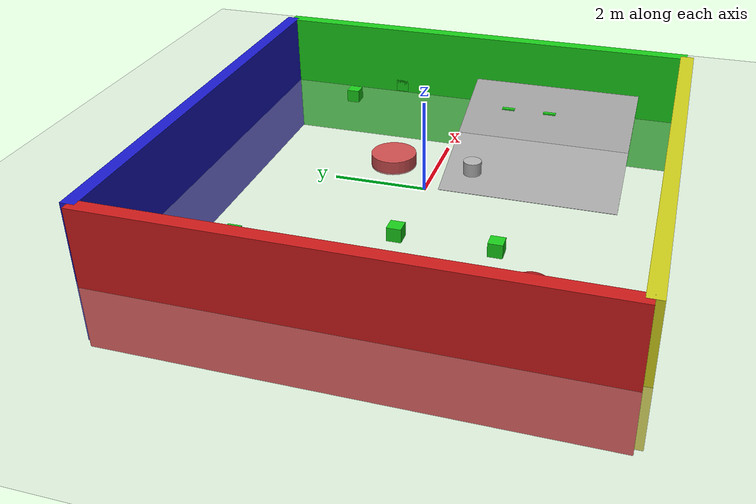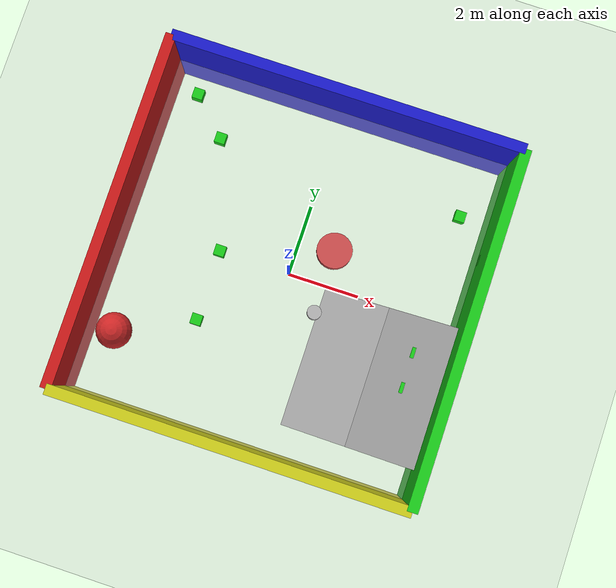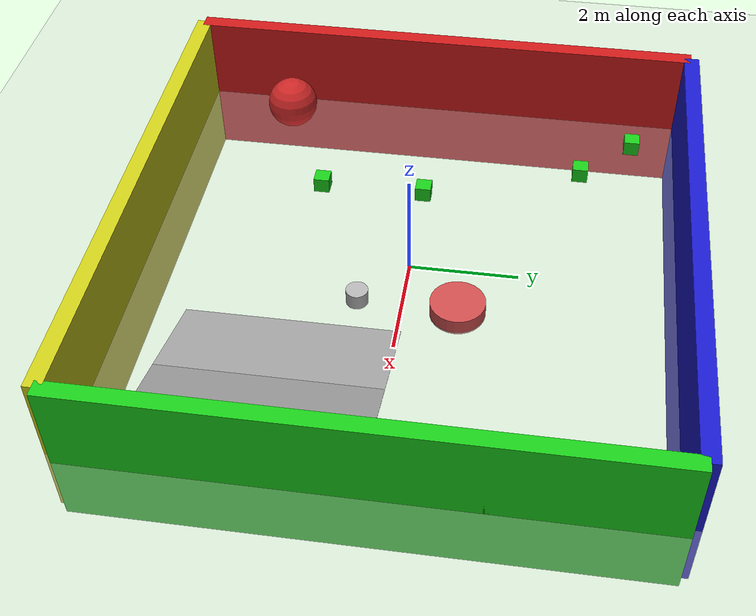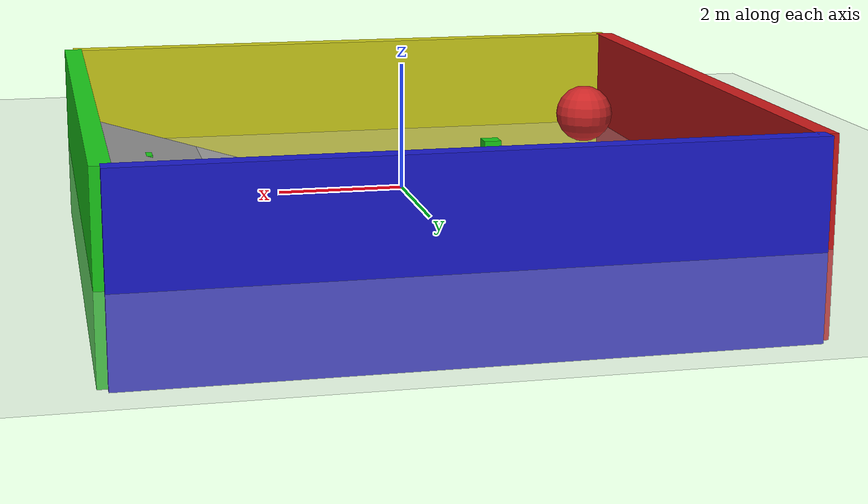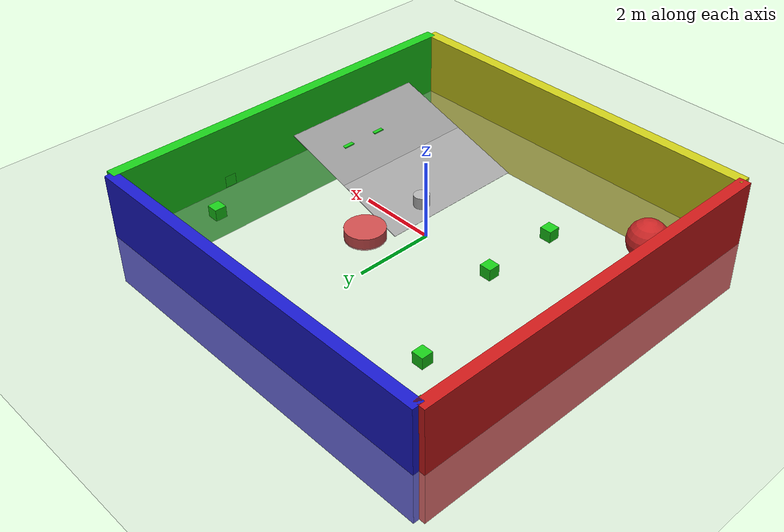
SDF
<?xml version="1.0" ?>
<sdf version='1.10'>
  <world name='empty'>

    <physics name='1ms' type='ignored'>
      <max_step_size>0.001</max_step_size>
      <real_time_factor>1</real_time_factor>
      <real_time_update_rate>1000</real_time_update_rate>
    </physics>

        <plugin
            filename="gz-sim-physics-system"
            name="gz::sim::systems::Physics">
        </plugin>
        <plugin
            filename="gz-sim-user-commands-system"
            name="gz::sim::systems::UserCommands">
        </plugin>
        <plugin
            filename="gz-sim-scene-broadcaster-system"
            name="gz::sim::systems::SceneBroadcaster">
        </plugin>
        <plugin
            filename="gz-sim-imu-system"
            name="gz::sim::systems::Imu">
        </plugin>
        <plugin
            filename="gz-sim-sensors-system"
            name="gz::sim::systems::Sensors">
            <render_engine>ogre2</render_engine>
        </plugin>

        <plugin
            filename="gz-sim-buoyancy-system"
            name="gz::sim::systems::Buoyancy">
            <uniform_fluid_density>1000</uniform_fluid_density>
        </plugin>
          <plugin
            filename="gz-sim-particle-emitter-system"
            name="gz::sim::systems::ParticleEmitter">
          </plugin>

        <plugin
            filename="gz-sim-contact-system"
            name="gz::sim::systems::Contact">
        </plugin>

        <gui fullscreen="0">

          <!-- 3D scene -->
          <plugin filename="MinimalScene" name="3D View">
            <gz-gui>
              <title>3D View</title>
              <property type="bool" key="showTitleBar">false</property>
              <property type="string" key="state">docked</property>
            </gz-gui>

            <engine>ogre2</engine>
            <scene>scene</scene>
            <ambient_light>0.4 0.4 0.4</ambient_light>
            <background_color>0.8 0.8 0.8</background_color>
            <camera_pose>-6 0 6 0 0.5 0</camera_pose>
            <camera_clip>
              <near>0.25</near>
              <far>25000</far>
            </camera_clip>
          </plugin>

          <!-- Plugins that add functionality to the scene -->
          <plugin filename="EntityContextMenuPlugin" name="Entity context menu">
            <gz-gui>
              <property key="state" type="string">floating</property>
              <property key="width" type="double">5</property>
              <property key="height" type="double">5</property>
              <property key="showTitleBar" type="bool">false</property>
            </gz-gui>
          </plugin>
          <plugin filename="GzSceneManager" name="Scene Manager">
            <gz-gui>
              <property key="resizable" type="bool">false</property>
              <property key="width" type="double">5</property>
              <property key="height" type="double">5</property>
              <property key="state" type="string">floating</property>
              <property key="showTitleBar" type="bool">false</property>
            </gz-gui>
          </plugin>
          <plugin filename="InteractiveViewControl" name="Interactive view control">
            <gz-gui>
              <property key="resizable" type="bool">false</property>
              <property key="width" type="double">5</property>
              <property key="height" type="double">5</property>
              <property key="state" type="string">floating</property>
              <property key="showTitleBar" type="bool">false</property>
            </gz-gui>
          </plugin>
          <plugin filename="CameraTracking" name="Camera Tracking">
            <gz-gui>
              <property key="resizable" type="bool">false</property>
              <property key="width" type="double">5</property>
              <property key="height" type="double">5</property>
              <property key="state" type="string">floating</property>
              <property key="showTitleBar" type="bool">false</property>
            </gz-gui>
          </plugin>
          <plugin filename="MarkerManager" name="Marker manager">
            <gz-gui>
              <property key="resizable" type="bool">false</property>
              <property key="width" type="double">5</property>
              <property key="height" type="double">5</property>
              <property key="state" type="string">floating</property>
              <property key="showTitleBar" type="bool">false</property>
            </gz-gui>
          </plugin>
          <plugin filename="SelectEntities" name="Select Entities">
            <gz-gui>
              <anchors target="Select entities">
                <line own="right" target="right"/>
                <line own="top" target="top"/>
              </anchors>
              <property key="resizable" type="bool">false</property>
              <property key="width" type="double">5</property>
              <property key="height" type="double">5</property>
              <property key="state" type="string">floating</property>
              <property key="showTitleBar" type="bool">false</property>
            </gz-gui>
          </plugin>
          <plugin filename="VisualizationCapabilities" name="Visualization Capabilities">
            <gz-gui>
              <property key="resizable" type="bool">false</property>
              <property key="width" type="double">5</property>
              <property key="height" type="double">5</property>
              <property key="state" type="string">floating</property>
              <property key="showTitleBar" type="bool">false</property>
            </gz-gui>
          </plugin>

          <plugin filename="Spawn" name="Spawn Entities">
            <gz-gui>
              <anchors target="Select entities">
                <line own="right" target="right"/>
                <line own="top" target="top"/>
              </anchors>
              <property key="resizable" type="bool">false</property>
              <property key="width" type="double">5</property>
              <property key="height" type="double">5</property>
              <property key="state" type="string">floating</property>
              <property key="showTitleBar" type="bool">false</property>
            </gz-gui>
          </plugin>

          <!-- World control -->
          <plugin filename="WorldControl" name="World control">
            <gz-gui>
              <title>World control</title>
              <property type="bool" key="showTitleBar">false</property>
              <property type="bool" key="resizable">false</property>
              <property type="double" key="height">72</property>
              <property type="double" key="width">121</property>
              <property type="double" key="z">1</property>

              <property type="string" key="state">floating</property>
              <anchors target="3D View">
                <line own="left" target="left"/>
                <line own="bottom" target="bottom"/>
              </anchors>
            </gz-gui>

            <play_pause>true</play_pause>
            <step>true</step>
            <start_paused>true</start_paused>
            <use_event>true</use_event>

          </plugin>

          <!-- World statistics -->
          <plugin filename="WorldStats" name="World stats">
            <gz-gui>
              <title>World stats</title>
              <property type="bool" key="showTitleBar">false</property>
              <property type="bool" key="resizable">false</property>
              <property type="double" key="height">110</property>
              <property type="double" key="width">290</property>
              <property type="double" key="z">1</property>

              <property type="string" key="state">floating</property>
              <anchors target="3D View">
                <line own="right" target="right"/>
                <line own="bottom" target="bottom"/>
              </anchors>
            </gz-gui>

            <sim_time>true</sim_time>
            <real_time>true</real_time>
            <real_time_factor>true</real_time_factor>
            <iterations>true</iterations>
          </plugin>

          <!-- Insert simple shapes -->
          <plugin filename="Shapes" name="Shapes">
            <gz-gui>
              <property key="resizable" type="bool">false</property>
              <property key="x" type="double">0</property>
              <property key="y" type="double">0</property>
              <property key="width" type="double">250</property>
              <property key="height" type="double">50</property>
              <property key="state" type="string">floating</property>
              <property key="showTitleBar" type="bool">false</property>
              <property key="cardBackground" type="string">#666666</property>
            </gz-gui>
          </plugin>

          <!-- Insert lights -->
          <plugin filename="Lights" name="Lights">
            <gz-gui>
              <property key="resizable" type="bool">false</property>
              <property key="x" type="double">250</property>
              <property key="y" type="double">0</property>
              <property key="width" type="double">150</property>
              <property key="height" type="double">50</property>
              <property key="state" type="string">floating</property>
              <property key="showTitleBar" type="bool">false</property>
              <property key="cardBackground" type="string">#666666</property>
            </gz-gui>
          </plugin>

          <!-- Translate / rotate -->
          <plugin filename="TransformControl" name="Transform control">
            <gz-gui>
              <property key="resizable" type="bool">false</property>
              <property key="x" type="double">0</property>
              <property key="y" type="double">50</property>
              <property key="width" type="double">250</property>
              <property key="height" type="double">50</property>
              <property key="state" type="string">floating</property>
              <property key="showTitleBar" type="bool">false</property>
              <property key="cardBackground" type="string">#777777</property>
            </gz-gui>
          </plugin>

          <!-- Inspector -->
          <plugin filename="ComponentInspector" name="Component inspector">
            <gz-gui>
              <property type="string" key="state">docked_collapsed</property>
            </gz-gui>
          </plugin>

          <!-- View angle -->
          <plugin filename="ViewAngle" name="View angle">
            <gz-gui>
              <property type="string" key="state">docked_collapsed</property>
            </gz-gui>
          </plugin>

            <!-- KeyPublisher plugin-->
            <plugin filename="KeyPublisher" name="Key Publisher"/>

        </gui>

    <gravity>0 0 9.8</gravity>
    <magnetic_field>5.5644999999999998e-06 2.2875799999999999e-05 -4.2388400000000002e-05</magnetic_field>
    <atmosphere type='adiabatic'/>
    <scene>
      <ambient>0.400000006 0.400000006 0.400000006 1</ambient>
      <background>0.699999988 0.699999988 0.699999988 1</background>
      <shadows>true</shadows>
    </scene>
    <model name='ground_plane'>
      <static>true</static>
      <link name='link'>
        <collision name='collision'>
          <geometry>
            <plane>
              <normal>0 0 1</normal>
              <size>100 100</size>
            </plane>
          </geometry>
          <surface>
            <friction>
              <ode>
               <mu>1</mu>
               <mu2>1</mu2>
              </ode>
            </friction>
            <bounce/>
            <contact/>
          </surface>
        </collision>
        <visual name='visual'>
          <geometry>
            <plane>
              <normal>0 0 1</normal>
              <size>100 100</size>
            </plane>
          </geometry>
          <material>
            <ambient>0.800000012 0.800000012 0.800000012 1</ambient>
            <diffuse>0.800000012 0.800000012 0.800000012 1</diffuse>
            <specular>0.800000012 0.800000012 0.800000012 1</specular>
          </material>
        </visual>
        <pose>0 0 0 0 0 0</pose>
        <inertial>
          <pose>0 0 0 0 0 0</pose>
          <mass>1</mass>
          <inertia>
            <ixx>1</ixx>
            <ixy>0</ixy>
            <ixz>0</ixz>
            <iyy>1</iyy>
            <iyz>0</iyz>
            <izz>1</izz>
          </inertia>
        </inertial>
        <enable_wind>false</enable_wind>
      </link>
      <pose>0 0 0 0 0 0</pose>
      <self_collide>false</self_collide>
    </model>
    <model name='wall_left'>
      <pose>-5 0 0.15 0 0 0</pose>
      <link name='wall_left_link'>
        <collision name='wall_left_collision'>
          <geometry>
            <box>
              <size>0.3 10 3</size>
            </box>
          </geometry>
          <surface>
            <friction>
              <ode/>
            </friction>
            <bounce/>
            <contact/>
          </surface>
        </collision>
        <visual name='wall_left_visual'>
          <geometry>
            <box>
              <size>0.3 10 3</size>
            </box>
          </geometry>
          <material>
            <ambient>0.8 0.1 0.1 1</ambient>
            <diffuse>0.8 0.1 0.1 1</diffuse>
            <specular>0.8 0.1 0.1 1</specular>
          </material>
        </visual>
      </link>
      <static>true</static>
    </model>

    <model name='wall_right'>
      <pose>5 0 0.15 0 0 0</pose>
      <link name='wall_right_link'>
        <collision name='wall_right_collision'>
          <geometry>
            <box>
              <size>0.3 10 3</size>
            </box>
          </geometry>
          <surface>
            <friction>
              <ode/>
            </friction>
            <bounce/>
            <contact/>
          </surface>
        </collision>
        <visual name='wall_right_visual'>
          <geometry>
            <box>
              <size>0.3 10 3</size>
            </box>
          </geometry>
          <material>
            <ambient>0.1 0.8 0.1 1</ambient>
            <diffuse>0.1 0.8 0.1 1</diffuse>
            <specular>0.1 0.8 0.1 1</specular>
          </material>
        </visual>
      </link>
      <static>true</static>
    </model>

    <model name='wall_top'>
      <pose>0 5 0.15 0 0 0</pose>
      <link name='wall_top_link'>
        <collision name='wall_top_collision'>
          <geometry>
            <box>
              <size>10 0.3 3</size>
            </box>
          </geometry>
          <surface>
            <friction>
              <ode/>
            </friction>
            <bounce/>
            <contact/>
          </surface>
        </collision>
        <visual name='wall_top_visual'>
          <geometry>
            <box>
              <size>10 0.3 3</size>
            </box>
          </geometry>
          <material>
            <ambient>0.1 0.1 0.8 1</ambient>
            <diffuse>0.1 0.1 0.8 1</diffuse>
            <specular>0.1 0.1 0.8 1</specular>
          </material>
        </visual>
      </link>
      <static>true</static>
    </model>

    <model name='wall_bottom'>
      <pose>0 -5 0.15 0 0 0</pose>
      <link name='wall_bottom_link'>
        <collision name='wall_bottom_collision'>
          <geometry>
            <box>
              <size>10 0.3 3</size>
            </box>
          </geometry>
          <surface>
            <friction>
              <ode/>
            </friction>
            <bounce/>
            <contact/>
          </surface>
        </collision>
        <visual name='wall_bottom_visual'>
          <geometry>
            <box>
              <size>10 0.3 3</size>
            </box>
          </geometry>
          <material>
            <ambient>0.8 0.8 0.1 1</ambient>
            <diffuse>0.8 0.8 0.1 1</diffuse>
            <specular>0.8 0.8 0.1 1</specular>
          </material>
        </visual>
      </link>
      <static>true</static>
    </model>

        <model name="slope">
      <static>true</static>
      <link name="slope_link">
        <collision name="collision">
          <geometry>
            <box>
              <size>2 2 0.01</size>
            </box>
          </geometry>
        </collision>
        <visual name="visual">
          <geometry>
            <box>
              <size>4 -4 0.01</size>
            </box>
          </geometry>
          <material>
            <script>
              <uri>file://media/materials/scripts/gazebo.material</uri>
              <name>Gazebo/Grey</name>
            </script>
          </material>
        </visual>
        <pose>3 -2 0 0 -0.3 0</pose>
      </link>
    </model>

    <model name="sphere">
      <static>true</static>
      <link name="sphere_link">
        <collision name="collision">
          <geometry>
            <sphere>
              <radius>0.5</radius>
            </sphere>
          </geometry>
        </collision>
        <visual name="visual">
          <geometry>
            <sphere>
              <radius>0.5</radius>
            </sphere>
          </geometry>
          <material>
            <script>
              <uri>file://media/materials/scripts/gazebo.material</uri>
              <name>Gazebo/Red</name>
            </script>
          </material>
        </visual>
        <pose>-4 -3 0.5 0 0 0</pose>
      </link>
    </model>

<model name='obstacle_box1'>
  <pose>-2 0 0.15 0 0 0</pose>
  <link name='obstacle_box_link'>
    <collision name='obstacle_box_collision'>
      <geometry>
        <box>
          <size>0.3 0.3 0.3</size>
        </box>
      </geometry>
      <surface>
        <friction>
          <ode/>
        </friction>
        <bounce/>
        <contact/>
      </surface>
    </collision>
    <visual name='obstacle_box_visual'>
      <geometry>
        <box>
          <size>0.3 0.3 0.3</size>
        </box>
      </geometry>
      <material>
        <ambient>0.1 0.8 0.1 1</ambient>
        <diffuse>0.1 0.8 0.1 1</diffuse>
        <specular>0.1 0.8 0.1 1</specular>
      </material>
    </visual>
  </link>
  <static>false</static>
</model>

<model name='obstacle_box13'>
  <pose>4 -2 0.15 0 0 0</pose>
  <link name='obstacle_box_link'>
    <collision name='obstacle_box_collision'>
      <geometry>
        <box>
          <size>0.3 0.3 0.3</size>
        </box>
      </geometry>
      <surface>
        <friction>
          <ode/>
        </friction>
        <bounce/>
        <contact/>
      </surface>
    </collision>
    <visual name='obstacle_box_visual'>
      <geometry>
        <box>
          <size>0.3 0.3 0.3</size>
        </box>
      </geometry>
      <material>
        <ambient>0.7 0.8 0.1 1</ambient>
        <diffuse>0.1 0.8 0.1 1</diffuse>
        <specular>0.8 0.8 0.1 1</specular>
      </material>
    </visual>
  </link>
  <static>false</static>
</model>

<model name='obstacle_box14'>
  <pose>4 -1 0.15 0 0 0</pose>
  <link name='obstacle_box_link'>
    <collision name='obstacle_box_collision'>
      <geometry>
        <box>
          <size>0.3 0.3 0.3</size>
        </box>
      </geometry>
      <surface>
        <friction>
          <ode/>
        </friction>
        <bounce/>
        <contact/>
      </surface>
    </collision>
    <visual name='obstacle_box_visual'>
      <geometry>
        <box>
          <size>0.3 0.3 0.3</size>
        </box>
      </geometry>
      <material>
        <ambient>0.1 0.8 0.1 1</ambient>
        <diffuse>0.1 0.8 0.1 1</diffuse>
        <specular>0.1 0.8 0.1 1</specular>
      </material>
    </visual>
  </link>
  <static>false</static>
</model>

<model name='obstacle_box5'>
  <pose>-2 -2 0.15 0 0 0</pose>
  <link name='obstacle_box_link'>
    <collision name='obstacle_box_collision'>
      <geometry>
        <box>
          <size>0.3 0.3 0.3</size>
        </box>
      </geometry>
      <surface>
        <friction>
          <ode/>
        </friction>
        <bounce/>
        <contact/>
      </surface>
    </collision>
    <visual name='obstacle_box_visual'>
      <geometry>
        <box>
          <size>0.3 0.3 0.3</size>
        </box>
      </geometry>
      <material>
        <ambient>0.1 0.8 0.1 1</ambient>
        <diffuse>0.1 0.8 0.1 1</diffuse>
        <specular>0.1 0.8 0.1 1</specular>
      </material>
    </visual>
  </link>
  <static>false</static>
</model>

    <model name='obstacle_cylinder'>
      <pose>1 1 0.1 0 0 0</pose>
      <link name='obstacle_cylinder_link'>
        <collision name='obstacle_cylinder_collision'>
          <geometry>
            <cylinder>
              <radius>0.5</radius>
              <length>0.3</length>
            </cylinder>
          </geometry>
          <surface>
            <friction>
              <ode/>
            </friction>
            <bounce/>
            <contact/>
          </surface>
        </collision>
        <visual name='obstacle_cylinder_visual'>
          <geometry>
            <cylinder>
              <radius>0.5</radius>
              <length>0.3</length>
            </cylinder>
          </geometry>
          <material>
            <ambient>0.8 0.3 0.3 1</ambient>
            <diffuse>0.8 0.3 0.3 1</diffuse>
            <specular>0.8 0.3 0.3 1</specular>
          </material>
        </visual>
      </link>
      <static>false</static>
    </model>

    <model name='obstacle_box'>
      <pose>-3 3 0.15 0 0 0</pose>
      <link name='obstacle_box_link'>
        <collision name='obstacle_box_collision'>
          <geometry>
            <box>
              <size>0.3 0.3 0.3</size>
            </box>
          </geometry>
          <surface>
            <friction>
              <ode/>
            </friction>
            <bounce/>
            <contact/>
          </surface>
        </collision>
        <visual name='obstacle_box_visual'>
          <geometry>
            <box>
              <size>0.3 0.3 0.3</size>
            </box>
          </geometry>
          <material>
            <ambient>0.1 0.8 0.1 1</ambient>
            <diffuse>0.1 0.8 0.1 1</diffuse>
            <specular>0.1 0.8 0.1 1</specular>
          </material>
        </visual>
      </link>
      <static>false</static>
    </model>

<model name='obstacle_box2'>
      <pose>-4 4 0.15 0 0 0</pose>
      <link name='obstacle_box_link'>
        <collision name='obstacle_box_collision'>
          <geometry>
            <box>
              <size>0.3 0.3 0.3</size>
            </box>
          </geometry>
          <surface>
            <friction>
              <ode/>
            </friction>
            <bounce/>
            <contact/>
          </surface>
        </collision>
        <visual name='obstacle_box_visual'>
          <geometry>
            <box>
              <size>0.3 0.3 0.3</size>
            </box>
          </geometry>
          <material>
            <ambient>0.1 0.8 0.1 1</ambient>
            <diffuse>0.1 0.8 0.1 1</diffuse>
            <specular>0.1 0.8 0.1 1</specular>
          </material>
        </visual>
      </link>
      <static>false</static>
    </model>

<model name='obstacle_box3'>
      <pose>5 2 0.15 0 0 0</pose>
      <link name='obstacle_box_link'>
        <collision name='obstacle_box_collision'>
          <geometry>
            <box>
              <size>0.3 0.3 0.3</size>
            </box>
          </geometry>
          <surface>
            <friction>
              <ode/>
            </friction>
            <bounce/>
            <contact/>
          </surface>
        </collision>
        <visual name='obstacle_box_visual'>
          <geometry>
            <box>
              <size>0.3 0.3 0.3</size>
            </box>
          </geometry>
          <material>
            <ambient>0.1 0.8 0.1 1</ambient>
            <diffuse>0.1 0.8 0.1 1</diffuse>
            <specular>0.1 0.8 0.1 1</specular>
          </material>
        </visual>
      </link>
      <static>false</static>
    </model>

    <model name='obstacle_box4'>
      <pose>4 3 0.15 0 0 0</pose>
      <link name='obstacle_box_link'>
        <collision name='obstacle_box_collision'>
          <geometry>
            <box>
              <size>0.3 0.4 0.3</size>
            </box>
          </geometry>
          <surface>
            <friction>
              <ode/>
            </friction>
            <bounce/>
            <contact/>
          </surface>
        </collision>
        <visual name='obstacle_box_visual'>
          <geometry>
            <box>
              <size>0.3 0.3 0.3</size>
            </box>
          </geometry>
          <material>
            <ambient>0.1 0.8 0.1 1</ambient>
            <diffuse>0.1 0.8 0.1 1</diffuse>
            <specular>0.1 0.8 0.1 1</specular>
          </material>
        </visual>
      </link>
      <static>false</static>
    </model>

    <model name='cylinder'>
      <pose>1.0 -0.8 0.15 0 0 0</pose>
      <link name='cylinder_link'>
        <inertial>
          <inertia>
            <ixx>0.145</ixx>
            <ixy>0</ixy>
            <ixz>0</ixz>
            <iyy>0.145</iyy>
            <iyz>0</iyz>
            <izz>0.125</izz>
          </inertia>
          <mass>1</mass>
          <pose>0 0 0 0 0 0</pose>
        </inertial>
        <collision name='cylinder_collision'>
          <geometry>
            <cylinder>
              <radius>0.2</radius>
              <length>0.3</length>
            </cylinder>
          </geometry>
          <surface>
            <friction>
              <ode/>
            </friction>
            <bounce/>
            <contact/>
          </surface>
        </collision>
        <visual name='cylinder_visual'>
          <geometry>
            <cylinder>
              <radius>0.2</radius>
              <length>0.3</length>
            </cylinder>
          </geometry>
          <material>
            <ambient>0.300000012 0.300000012 0.300000012 1</ambient>
            <diffuse>0.699999988 0.699999988 0.699999988 1</diffuse>
            <specular>1 1 1 1</specular>
          </material>
        </visual>
        <pose>0 0 0 0 0 0</pose>
        <enable_wind>false</enable_wind>
      </link>
      <static>false</static>
      <self_collide>false</self_collide>
    </model>
    <light name='sun' type='directional'>
      <pose>0 0 10 0 0 0</pose>
      <cast_shadows>true</cast_shadows>
      <intensity>1</intensity>
      <direction>-0.5 0.10000000000000001 -0.90000000000000002</direction>
      <diffuse>0.800000012 0.800000012 0.800000012 1</diffuse>
      <specular>0.200000003 0.200000003 0.200000003 1</specular>
      <attenuation>
        <range>1000</range>
        <linear>0.01</linear>
        <constant>0.90000000000000002</constant>
        <quadratic>0.001</quadratic>
      </attenuation>
      <spot>
        <inner_angle>0</inner_angle>
        <outer_angle>0</outer_angle>
        <falloff>0</falloff>
      </spot>
    </light>
  </world>
</sdf>
